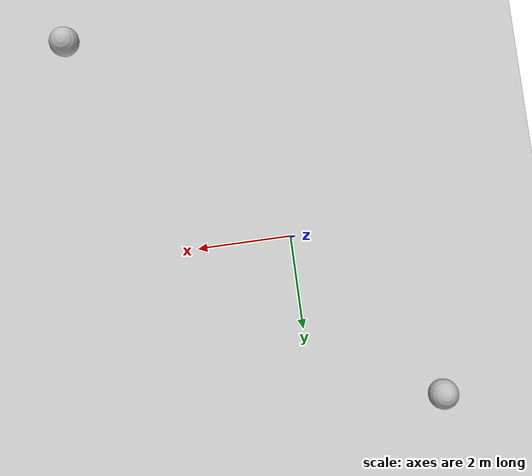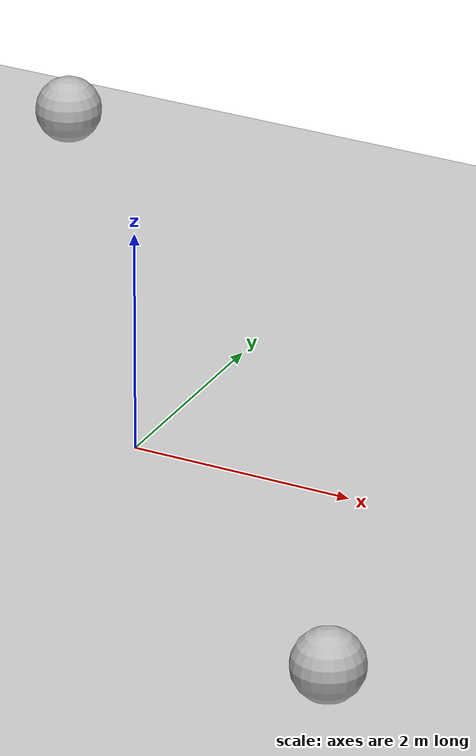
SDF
<?xml version="1.0" ?>
<sdf version="1.6">
  <world name="flat_radiation_test_world">
    <gravity>0 0 -9.81</gravity>
    <plugin name="gazebo_ros_state" filename="libgazebo_ros_state.so">
      <ros><namespace>/</namespace></ros>
      <update_rate>10.0</update_rate>
    </plugin>
    <physics name="default_physics" type="ode">
      <max_step_size>0.001</max_step_size>
      <real_time_factor>1.0</real_time_factor>
      <real_time_update_rate>1000</real_time_update_rate>
    </physics>
    <scene><shadows>false</shadows></scene>
    <include>
      <uri>model://ground_plane</uri>
    </include>
    <model name="radiation_source_alpha">
      <static>true</static><pose>-2.5 3.5 1.2 0 0 0</pose>
      <link name="source_link"><visual name="source_visual"><geometry><sphere><radius>0.3</radius></sphere></geometry></visual></link>
    </model>
    <model name="radiation_source_beta">
      <static>true</static><pose>4.0 -4.5 1.2 0 0 0</pose>
      <link name="source_link"><visual name="source_visual"><geometry><sphere><radius>0.3</radius></sphere></geometry></visual></link>
    </model>
    <plugin name="radiation_world_plugin" filename="libgazebo_radiation_world_plugin.so">
      <ros><namespace>/</namespace></ros>
      <target_model>husky</target_model>
      <background_dose_rate_usv_h>0.05</background_dose_rate_usv_h>
      <publish_rate_hz>10.0</publish_rate_hz>
      <use_3d_distance>false</use_3d_distance>
      <publish_radiation_map>true</publish_radiation_map>
      <terrain_map_topic>/terrain_impedance_map</terrain_map_topic>
      <radiation_map_topic>/ground_truth/radiation_map</radiation_map_topic>
      <radiation_map_saturation_usv_h>8.0</radiation_map_saturation_usv_h>
      <radiation_map_use_3d_distance>false</radiation_map_use_3d_distance>
      <radiation_map_z_m>0.0</radiation_map_z_m>
      <dose_rate_topic>/radiation/dose_rate_usv_h</dose_rate_topic>
      <accumulated_dose_topic>/radiation/accumulated_dose_usv</accumulated_dose_topic>
      <nearest_distance_topic>/radiation/nearest_source_distance_m</nearest_distance_topic>
      <source><model_name>radiation_source_alpha</model_name><strength_usv_h_m2>6.0</strength_usv_h_m2><softening_radius_m>0.60</softening_radius_m><attenuation_per_m>0.04</attenuation_per_m></source>
      <source><model_name>radiation_source_beta</model_name><strength_usv_h_m2>4.0</strength_usv_h_m2><softening_radius_m>0.80</softening_radius_m><attenuation_per_m>0.04</attenuation_per_m></source>
    </plugin>
  </world>
</sdf>
